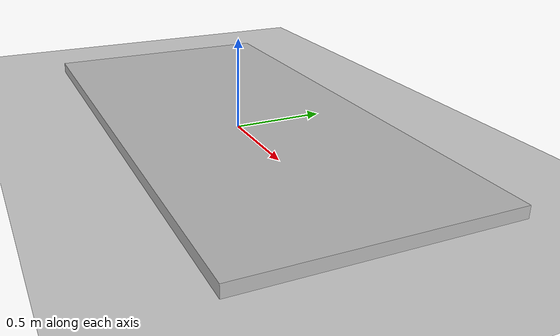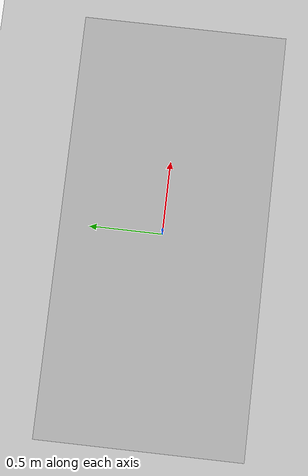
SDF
<?xml version="1.0" ?>
<sdf version="1.5">
  <world name="default">
    <!-- A global light source -->
    <include>
      <uri>model://sun</uri>
    </include>
    <!-- A ground plane -->
    <include>
      <uri>model://ground_plane</uri>
    </include>
    <include>
      <uri>model://asphalt_plane</uri>
    </include>
    <include>
      <uri>model://aruco_map_10_10</uri>
    </include>
    <physics name='default_physics' default='0' type='ode'>
      <gravity>0 0 -9.8066</gravity>
      <ode>
        <solver>
          <type>quick</type>
          <iters>10</iters>
          <sor>1.3</sor>
          <use_dynamic_moi_rescaling>0</use_dynamic_moi_rescaling>
        </solver>
        <constraints>
          <cfm>0</cfm>
          <erp>0.2</erp>
          <contact_max_correcting_vel>100</contact_max_correcting_vel>
          <contact_surface_layer>0.001</contact_surface_layer>
        </constraints>
      </ode>
      <max_step_size>0.004</max_step_size>
      <real_time_factor>1</real_time_factor>
      <real_time_update_rate>250</real_time_update_rate>
      <magnetic_field>6.0e-6 2.3e-5 -4.2e-5</magnetic_field>
    </physics>
  </world>
</sdf>

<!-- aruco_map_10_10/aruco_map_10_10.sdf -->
<sdf version='1.5'>
  <model name='aruco_map_10_10'>
    <static>true</static>
    <link name="link">
      <collision name="collision">
        <geometry>
          <box>
            <size>2.865 1.39 .12</size>
          </box>
        </geometry>
      </collision>
      <visual name="visual">
        <cast_shadows>false</cast_shadows>
        <geometry>
          <box>
            <size>2.865 1.39 .12</size>
          </box>
        </geometry>
        <material>
          <script>
            <uri>model://aruco_map_10_10/materials/scripts</uri>
            <uri>model://aruco_map_10_10/materials/textures</uri>
            <name>aruco/Image</name>
          </script>
        </material>
      </visual>
    </link>
  </model>
</sdf>
